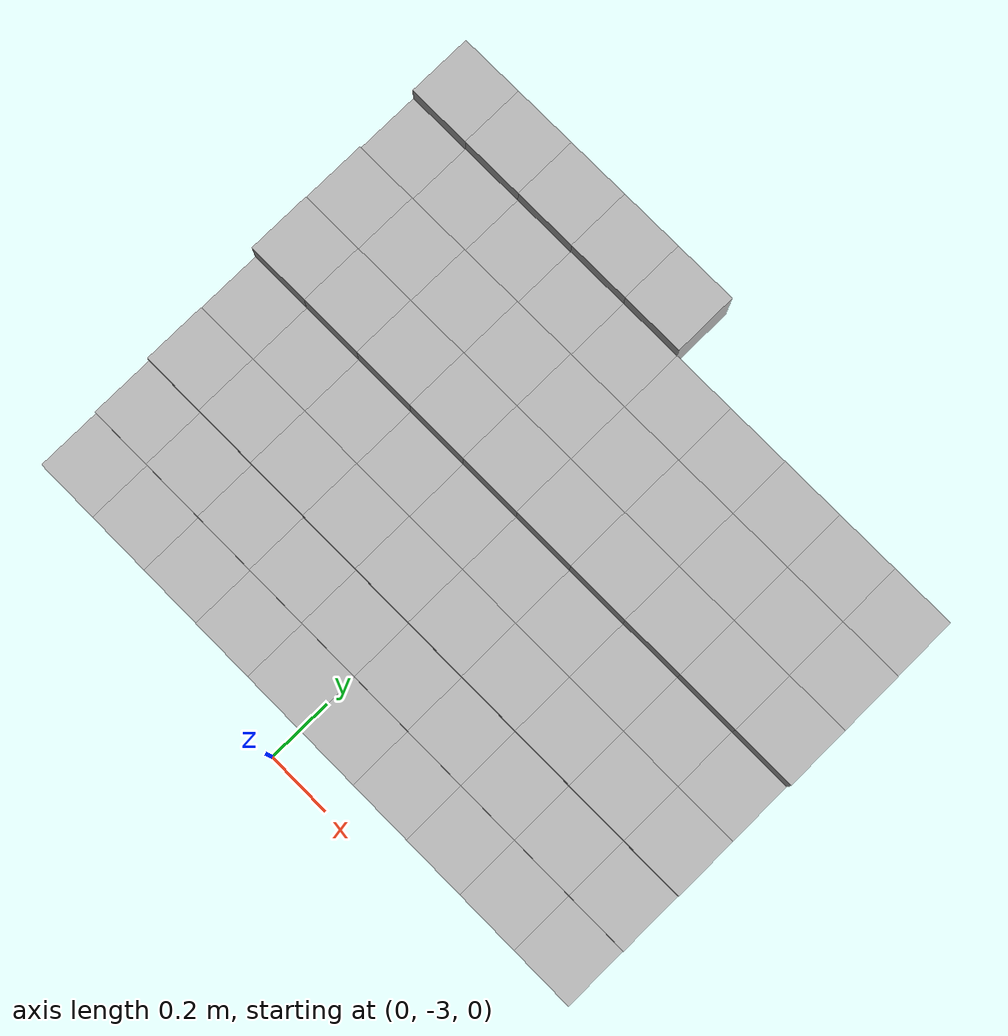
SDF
<sdf version="1.6">
 <model name="Terrain">
  <static>true</static>
  <link name="box_7_0">
   <pose>-0.9 -1.4 0.0894675590558 0 0 0</pose>
   <inertial>
    <mass>1.0</mass>
    <inertia><ixx>0.0</ixx><ixy>0.0</ixy><ixz>0.0</ixz><iyy>0.0</iyy><iyz>0.0</iyz><izz>0.0</izz></inertia>
   </inertial>
   <collision name="collision"><geometry><box><size>0.2 0.2 0.178935118112</size></box></geometry></collision>
   <visual name="visual"><geometry><box><size>0.2 0.2 0.178935118112</size></box></geometry></visual>
  </link>
  <link name="box_7_1">
   <pose>-0.7 -1.4 0.0894675590558 0 0 0</pose>
   <inertial>
    <mass>1.0</mass>
    <inertia><ixx>0.0</ixx><ixy>0.0</ixy><ixz>0.0</ixz><iyy>0.0</iyy><iyz>0.0</iyz><izz>0.0</izz></inertia>
   </inertial>
   <collision name="collision"><geometry><box><size>0.2 0.2 0.178935118112</size></box></geometry></collision>
   <visual name="visual"><geometry><box><size>0.2 0.2 0.178935118112</size></box></geometry></visual>
  </link>
  <link name="box_7_2">
   <pose>-0.5 -1.4 0.0894675590558 0 0 0</pose>
   <inertial>
    <mass>1.0</mass>
    <inertia><ixx>0.0</ixx><ixy>0.0</ixy><ixz>0.0</ixz><iyy>0.0</iyy><iyz>0.0</iyz><izz>0.0</izz></inertia>
   </inertial>
   <collision name="collision"><geometry><box><size>0.2 0.2 0.178935118112</size></box></geometry></collision>
   <visual name="visual"><geometry><box><size>0.2 0.2 0.178935118112</size></box></geometry></visual>
  </link>
  <link name="box_7_3">
   <pose>-0.3 -1.4 0.0894675590558 0 0 0</pose>
   <inertial>
    <mass>1.0</mass>
    <inertia><ixx>0.0</ixx><ixy>0.0</ixy><ixz>0.0</ixz><iyy>0.0</iyy><iyz>0.0</iyz><izz>0.0</izz></inertia>
   </inertial>
   <collision name="collision"><geometry><box><size>0.2 0.2 0.178935118112</size></box></geometry></collision>
   <visual name="visual"><geometry><box><size>0.2 0.2 0.178935118112</size></box></geometry></visual>
  </link>
  <link name="box_7_4">
   <pose>-0.1 -1.4 0.0894675590558 0 0 0</pose>
   <inertial>
    <mass>1.0</mass>
    <inertia><ixx>0.0</ixx><ixy>0.0</ixy><ixz>0.0</ixz><iyy>0.0</iyy><iyz>0.0</iyz><izz>0.0</izz></inertia>
   </inertial>
   <collision name="collision"><geometry><box><size>0.2 0.2 0.178935118112</size></box></geometry></collision>
   <visual name="visual"><geometry><box><size>0.2 0.2 0.178935118112</size></box></geometry></visual>
  </link>
  <link name="box_8_0">
   <pose>-0.9 -1.6 0.0574359904285 0 0 0</pose>
   <inertial>
    <mass>1.0</mass>
    <inertia><ixx>0.0</ixx><ixy>0.0</ixy><ixz>0.0</ixz><iyy>0.0</iyy><iyz>0.0</iyz><izz>0.0</izz></inertia>
   </inertial>
   <collision name="collision"><geometry><box><size>0.2 0.2 0.114871980857</size></box></geometry></collision>
   <visual name="visual"><geometry><box><size>0.2 0.2 0.114871980857</size></box></geometry></visual>
  </link>
  <link name="box_8_1">
   <pose>-0.7 -1.6 0.0574359904285 0 0 0</pose>
   <inertial>
    <mass>1.0</mass>
    <inertia><ixx>0.0</ixx><ixy>0.0</ixy><ixz>0.0</ixz><iyy>0.0</iyy><iyz>0.0</iyz><izz>0.0</izz></inertia>
   </inertial>
   <collision name="collision"><geometry><box><size>0.2 0.2 0.114871980857</size></box></geometry></collision>
   <visual name="visual"><geometry><box><size>0.2 0.2 0.114871980857</size></box></geometry></visual>
  </link>
  <link name="box_8_2">
   <pose>-0.5 -1.6 0.0574359904285 0 0 0</pose>
   <inertial>
    <mass>1.0</mass>
    <inertia><ixx>0.0</ixx><ixy>0.0</ixy><ixz>0.0</ixz><iyy>0.0</iyy><iyz>0.0</iyz><izz>0.0</izz></inertia>
   </inertial>
   <collision name="collision"><geometry><box><size>0.2 0.2 0.114871980857</size></box></geometry></collision>
   <visual name="visual"><geometry><box><size>0.2 0.2 0.114871980857</size></box></geometry></visual>
  </link>
  <link name="box_8_3">
   <pose>-0.3 -1.6 0.0574359904285 0 0 0</pose>
   <inertial>
    <mass>1.0</mass>
    <inertia><ixx>0.0</ixx><ixy>0.0</ixy><ixz>0.0</ixz><iyy>0.0</iyy><iyz>0.0</iyz><izz>0.0</izz></inertia>
   </inertial>
   <collision name="collision"><geometry><box><size>0.2 0.2 0.114871980857</size></box></geometry></collision>
   <visual name="visual"><geometry><box><size>0.2 0.2 0.114871980857</size></box></geometry></visual>
  </link>
  <link name="box_8_4">
   <pose>-0.1 -1.6 0.0574359904285 0 0 0</pose>
   <inertial>
    <mass>1.0</mass>
    <inertia><ixx>0.0</ixx><ixy>0.0</ixy><ixz>0.0</ixz><iyy>0.0</iyy><iyz>0.0</iyz><izz>0.0</izz></inertia>
   </inertial>
   <collision name="collision"><geometry><box><size>0.2 0.2 0.114871980857</size></box></geometry></collision>
   <visual name="visual"><geometry><box><size>0.2 0.2 0.114871980857</size></box></geometry></visual>
  </link>
  <link name="box_8_5">
   <pose>0.1 -1.6 0.0574359904285 0 0 0</pose>
   <inertial>
    <mass>1.0</mass>
    <inertia><ixx>0.0</ixx><ixy>0.0</ixy><ixz>0.0</ixz><iyy>0.0</iyy><iyz>0.0</iyz><izz>0.0</izz></inertia>
   </inertial>
   <collision name="collision"><geometry><box><size>0.2 0.2 0.114871980857</size></box></geometry></collision>
   <visual name="visual"><geometry><box><size>0.2 0.2 0.114871980857</size></box></geometry></visual>
  </link>
  <link name="box_8_6">
   <pose>0.3 -1.6 0.0574359904285 0 0 0</pose>
   <inertial>
    <mass>1.0</mass>
    <inertia><ixx>0.0</ixx><ixy>0.0</ixy><ixz>0.0</ixz><iyy>0.0</iyy><iyz>0.0</iyz><izz>0.0</izz></inertia>
   </inertial>
   <collision name="collision"><geometry><box><size>0.2 0.2 0.114871980857</size></box></geometry></collision>
   <visual name="visual"><geometry><box><size>0.2 0.2 0.114871980857</size></box></geometry></visual>
  </link>
  <link name="box_8_7">
   <pose>0.5 -1.6 0.0574359904285 0 0 0</pose>
   <inertial>
    <mass>1.0</mass>
    <inertia><ixx>0.0</ixx><ixy>0.0</ixy><ixz>0.0</ixz><iyy>0.0</iyy><iyz>0.0</iyz><izz>0.0</izz></inertia>
   </inertial>
   <collision name="collision"><geometry><box><size>0.2 0.2 0.114871980857</size></box></geometry></collision>
   <visual name="visual"><geometry><box><size>0.2 0.2 0.114871980857</size></box></geometry></visual>
  </link>
  <link name="box_8_8">
   <pose>0.7 -1.6 0.0574359904285 0 0 0</pose>
   <inertial>
    <mass>1.0</mass>
    <inertia><ixx>0.0</ixx><ixy>0.0</ixy><ixz>0.0</ixz><iyy>0.0</iyy><iyz>0.0</iyz><izz>0.0</izz></inertia>
   </inertial>
   <collision name="collision"><geometry><box><size>0.2 0.2 0.114871980857</size></box></geometry></collision>
   <visual name="visual"><geometry><box><size>0.2 0.2 0.114871980857</size></box></geometry></visual>
  </link>
  <link name="box_8_9">
   <pose>0.9 -1.6 0.0574359904285 0 0 0</pose>
   <inertial>
    <mass>1.0</mass>
    <inertia><ixx>0.0</ixx><ixy>0.0</ixy><ixz>0.0</ixz><iyy>0.0</iyy><iyz>0.0</iyz><izz>0.0</izz></inertia>
   </inertial>
   <collision name="collision"><geometry><box><size>0.2 0.2 0.114871980857</size></box></geometry></collision>
   <visual name="visual"><geometry><box><size>0.2 0.2 0.114871980857</size></box></geometry></visual>
  </link>
  <link name="box_9_0">
   <pose>-0.9 -1.8 0.065715749071 0 0 0</pose>
   <inertial>
    <mass>1.0</mass>
    <inertia><ixx>0.0</ixx><ixy>0.0</ixy><ixz>0.0</ixz><iyy>0.0</iyy><iyz>0.0</iyz><izz>0.0</izz></inertia>
   </inertial>
   <collision name="collision"><geometry><box><size>0.2 0.2 0.131431498142</size></box></geometry></collision>
   <visual name="visual"><geometry><box><size>0.2 0.2 0.131431498142</size></box></geometry></visual>
  </link>
  <link name="box_9_1">
   <pose>-0.7 -1.8 0.065715749071 0 0 0</pose>
   <inertial>
    <mass>1.0</mass>
    <inertia><ixx>0.0</ixx><ixy>0.0</ixy><ixz>0.0</ixz><iyy>0.0</iyy><iyz>0.0</iyz><izz>0.0</izz></inertia>
   </inertial>
   <collision name="collision"><geometry><box><size>0.2 0.2 0.131431498142</size></box></geometry></collision>
   <visual name="visual"><geometry><box><size>0.2 0.2 0.131431498142</size></box></geometry></visual>
  </link>
  <link name="box_9_2">
   <pose>-0.5 -1.8 0.065715749071 0 0 0</pose>
   <inertial>
    <mass>1.0</mass>
    <inertia><ixx>0.0</ixx><ixy>0.0</ixy><ixz>0.0</ixz><iyy>0.0</iyy><iyz>0.0</iyz><izz>0.0</izz></inertia>
   </inertial>
   <collision name="collision"><geometry><box><size>0.2 0.2 0.131431498142</size></box></geometry></collision>
   <visual name="visual"><geometry><box><size>0.2 0.2 0.131431498142</size></box></geometry></visual>
  </link>
  <link name="box_9_3">
   <pose>-0.3 -1.8 0.065715749071 0 0 0</pose>
   <inertial>
    <mass>1.0</mass>
    <inertia><ixx>0.0</ixx><ixy>0.0</ixy><ixz>0.0</ixz><iyy>0.0</iyy><iyz>0.0</iyz><izz>0.0</izz></inertia>
   </inertial>
   <collision name="collision"><geometry><box><size>0.2 0.2 0.131431498142</size></box></geometry></collision>
   <visual name="visual"><geometry><box><size>0.2 0.2 0.131431498142</size></box></geometry></visual>
  </link>
  <link name="box_9_4">
   <pose>-0.1 -1.8 0.065715749071 0 0 0</pose>
   <inertial>
    <mass>1.0</mass>
    <inertia><ixx>0.0</ixx><ixy>0.0</ixy><ixz>0.0</ixz><iyy>0.0</iyy><iyz>0.0</iyz><izz>0.0</izz></inertia>
   </inertial>
   <collision name="collision"><geometry><box><size>0.2 0.2 0.131431498142</size></box></geometry></collision>
   <visual name="visual"><geometry><box><size>0.2 0.2 0.131431498142</size></box></geometry></visual>
  </link>
  <link name="box_9_5">
   <pose>0.1 -1.8 0.065715749071 0 0 0</pose>
   <inertial>
    <mass>1.0</mass>
    <inertia><ixx>0.0</ixx><ixy>0.0</ixy><ixz>0.0</ixz><iyy>0.0</iyy><iyz>0.0</iyz><izz>0.0</izz></inertia>
   </inertial>
   <collision name="collision"><geometry><box><size>0.2 0.2 0.131431498142</size></box></geometry></collision>
   <visual name="visual"><geometry><box><size>0.2 0.2 0.131431498142</size></box></geometry></visual>
  </link>
  <link name="box_9_6">
   <pose>0.3 -1.8 0.065715749071 0 0 0</pose>
   <inertial>
    <mass>1.0</mass>
    <inertia><ixx>0.0</ixx><ixy>0.0</ixy><ixz>0.0</ixz><iyy>0.0</iyy><iyz>0.0</iyz><izz>0.0</izz></inertia>
   </inertial>
   <collision name="collision"><geometry><box><size>0.2 0.2 0.131431498142</size></box></geometry></collision>
   <visual name="visual"><geometry><box><size>0.2 0.2 0.131431498142</size></box></geometry></visual>
  </link>
  <link name="box_9_7">
   <pose>0.5 -1.8 0.065715749071 0 0 0</pose>
   <inertial>
    <mass>1.0</mass>
    <inertia><ixx>0.0</ixx><ixy>0.0</ixy><ixz>0.0</ixz><iyy>0.0</iyy><iyz>0.0</iyz><izz>0.0</izz></inertia>
   </inertial>
   <collision name="collision"><geometry><box><size>0.2 0.2 0.131431498142</size></box></geometry></collision>
   <visual name="visual"><geometry><box><size>0.2 0.2 0.131431498142</size></box></geometry></visual>
  </link>
  <link name="box_9_8">
   <pose>0.7 -1.8 0.065715749071 0 0 0</pose>
   <inertial>
    <mass>1.0</mass>
    <inertia><ixx>0.0</ixx><ixy>0.0</ixy><ixz>0.0</ixz><iyy>0.0</iyy><iyz>0.0</iyz><izz>0.0</izz></inertia>
   </inertial>
   <collision name="collision"><geometry><box><size>0.2 0.2 0.131431498142</size></box></geometry></collision>
   <visual name="visual"><geometry><box><size>0.2 0.2 0.131431498142</size></box></geometry></visual>
  </link>
  <link name="box_9_9">
   <pose>0.9 -1.8 0.065715749071 0 0 0</pose>
   <inertial>
    <mass>1.0</mass>
    <inertia><ixx>0.0</ixx><ixy>0.0</ixy><ixz>0.0</ixz><iyy>0.0</iyy><iyz>0.0</iyz><izz>0.0</izz></inertia>
   </inertial>
   <collision name="collision"><geometry><box><size>0.2 0.2 0.131431498142</size></box></geometry></collision>
   <visual name="visual"><geometry><box><size>0.2 0.2 0.131431498142</size></box></geometry></visual>
  </link>
  <link name="box_10_0">
   <pose>-0.9 -2.0 0.0686694296625 0 0 0</pose>
   <inertial>
    <mass>1.0</mass>
    <inertia><ixx>0.0</ixx><ixy>0.0</ixy><ixz>0.0</ixz><iyy>0.0</iyy><iyz>0.0</iyz><izz>0.0</izz></inertia>
   </inertial>
   <collision name="collision"><geometry><box><size>0.2 0.2 0.137338859325</size></box></geometry></collision>
   <visual name="visual"><geometry><box><size>0.2 0.2 0.137338859325</size></box></geometry></visual>
  </link>
  <link name="box_10_1">
   <pose>-0.7 -2.0 0.0686694296625 0 0 0</pose>
   <inertial>
    <mass>1.0</mass>
    <inertia><ixx>0.0</ixx><ixy>0.0</ixy><ixz>0.0</ixz><iyy>0.0</iyy><iyz>0.0</iyz><izz>0.0</izz></inertia>
   </inertial>
   <collision name="collision"><geometry><box><size>0.2 0.2 0.137338859325</size></box></geometry></collision>
   <visual name="visual"><geometry><box><size>0.2 0.2 0.137338859325</size></box></geometry></visual>
  </link>
  <link name="box_10_2">
   <pose>-0.5 -2.0 0.0686694296625 0 0 0</pose>
   <inertial>
    <mass>1.0</mass>
    <inertia><ixx>0.0</ixx><ixy>0.0</ixy><ixz>0.0</ixz><iyy>0.0</iyy><iyz>0.0</iyz><izz>0.0</izz></inertia>
   </inertial>
   <collision name="collision"><geometry><box><size>0.2 0.2 0.137338859325</size></box></geometry></collision>
   <visual name="visual"><geometry><box><size>0.2 0.2 0.137338859325</size></box></geometry></visual>
  </link>
  <link name="box_10_3">
   <pose>-0.3 -2.0 0.0686694296625 0 0 0</pose>
   <inertial>
    <mass>1.0</mass>
    <inertia><ixx>0.0</ixx><ixy>0.0</ixy><ixz>0.0</ixz><iyy>0.0</iyy><iyz>0.0</iyz><izz>0.0</izz></inertia>
   </inertial>
   <collision name="collision"><geometry><box><size>0.2 0.2 0.137338859325</size></box></geometry></collision>
   <visual name="visual"><geometry><box><size>0.2 0.2 0.137338859325</size></box></geometry></visual>
  </link>
  <link name="box_10_4">
   <pose>-0.1 -2.0 0.0686694296625 0 0 0</pose>
   <inertial>
    <mass>1.0</mass>
    <inertia><ixx>0.0</ixx><ixy>0.0</ixy><ixz>0.0</ixz><iyy>0.0</iyy><iyz>0.0</iyz><izz>0.0</izz></inertia>
   </inertial>
   <collision name="collision"><geometry><box><size>0.2 0.2 0.137338859325</size></box></geometry></collision>
   <visual name="visual"><geometry><box><size>0.2 0.2 0.137338859325</size></box></geometry></visual>
  </link>
  <link name="box_10_5">
   <pose>0.1 -2.0 0.0686694296625 0 0 0</pose>
   <inertial>
    <mass>1.0</mass>
    <inertia><ixx>0.0</ixx><ixy>0.0</ixy><ixz>0.0</ixz><iyy>0.0</iyy><iyz>0.0</iyz><izz>0.0</izz></inertia>
   </inertial>
   <collision name="collision"><geometry><box><size>0.2 0.2 0.137338859325</size></box></geometry></collision>
   <visual name="visual"><geometry><box><size>0.2 0.2 0.137338859325</size></box></geometry></visual>
  </link>
  <link name="box_10_6">
   <pose>0.3 -2.0 0.0686694296625 0 0 0</pose>
   <inertial>
    <mass>1.0</mass>
    <inertia><ixx>0.0</ixx><ixy>0.0</ixy><ixz>0.0</ixz><iyy>0.0</iyy><iyz>0.0</iyz><izz>0.0</izz></inertia>
   </inertial>
   <collision name="collision"><geometry><box><size>0.2 0.2 0.137338859325</size></box></geometry></collision>
   <visual name="visual"><geometry><box><size>0.2 0.2 0.137338859325</size></box></geometry></visual>
  </link>
  <link name="box_10_7">
   <pose>0.5 -2.0 0.0686694296625 0 0 0</pose>
   <inertial>
    <mass>1.0</mass>
    <inertia><ixx>0.0</ixx><ixy>0.0</ixy><ixz>0.0</ixz><iyy>0.0</iyy><iyz>0.0</iyz><izz>0.0</izz></inertia>
   </inertial>
   <collision name="collision"><geometry><box><size>0.2 0.2 0.137338859325</size></box></geometry></collision>
   <visual name="visual"><geometry><box><size>0.2 0.2 0.137338859325</size></box></geometry></visual>
  </link>
  <link name="box_10_8">
   <pose>0.7 -2.0 0.0686694296625 0 0 0</pose>
   <inertial>
    <mass>1.0</mass>
    <inertia><ixx>0.0</ixx><ixy>0.0</ixy><ixz>0.0</ixz><iyy>0.0</iyy><iyz>0.0</iyz><izz>0.0</izz></inertia>
   </inertial>
   <collision name="collision"><geometry><box><size>0.2 0.2 0.137338859325</size></box></geometry></collision>
   <visual name="visual"><geometry><box><size>0.2 0.2 0.137338859325</size></box></geometry></visual>
  </link>
  <link name="box_10_9">
   <pose>0.9 -2.0 0.0686694296625 0 0 0</pose>
   <inertial>
    <mass>1.0</mass>
    <inertia><ixx>0.0</ixx><ixy>0.0</ixy><ixz>0.0</ixz><iyy>0.0</iyy><iyz>0.0</iyz><izz>0.0</izz></inertia>
   </inertial>
   <collision name="collision"><geometry><box><size>0.2 0.2 0.137338859325</size></box></geometry></collision>
   <visual name="visual"><geometry><box><size>0.2 0.2 0.137338859325</size></box></geometry></visual>
  </link>
  <link name="box_11_0">
   <pose>-0.9 -2.2 0.0228005111256 0 0 0</pose>
   <inertial>
    <mass>1.0</mass>
    <inertia><ixx>0.0</ixx><ixy>0.0</ixy><ixz>0.0</ixz><iyy>0.0</iyy><iyz>0.0</iyz><izz>0.0</izz></inertia>
   </inertial>
   <collision name="collision"><geometry><box><size>0.2 0.2 0.0456010222512</size></box></geometry></collision>
   <visual name="visual"><geometry><box><size>0.2 0.2 0.0456010222512</size></box></geometry></visual>
  </link>
  <link name="box_11_1">
   <pose>-0.7 -2.2 0.0228005111256 0 0 0</pose>
   <inertial>
    <mass>1.0</mass>
    <inertia><ixx>0.0</ixx><ixy>0.0</ixy><ixz>0.0</ixz><iyy>0.0</iyy><iyz>0.0</iyz><izz>0.0</izz></inertia>
   </inertial>
   <collision name="collision"><geometry><box><size>0.2 0.2 0.0456010222512</size></box></geometry></collision>
   <visual name="visual"><geometry><box><size>0.2 0.2 0.0456010222512</size></box></geometry></visual>
  </link>
  <link name="box_11_2">
   <pose>-0.5 -2.2 0.0228005111256 0 0 0</pose>
   <inertial>
    <mass>1.0</mass>
    <inertia><ixx>0.0</ixx><ixy>0.0</ixy><ixz>0.0</ixz><iyy>0.0</iyy><iyz>0.0</iyz><izz>0.0</izz></inertia>
   </inertial>
   <collision name="collision"><geometry><box><size>0.2 0.2 0.0456010222512</size></box></geometry></collision>
   <visual name="visual"><geometry><box><size>0.2 0.2 0.0456010222512</size></box></geometry></visual>
  </link>
  <link name="box_11_3">
   <pose>-0.3 -2.2 0.0228005111256 0 0 0</pose>
   <inertial>
    <mass>1.0</mass>
    <inertia><ixx>0.0</ixx><ixy>0.0</ixy><ixz>0.0</ixz><iyy>0.0</iyy><iyz>0.0</iyz><izz>0.0</izz></inertia>
   </inertial>
   <collision name="collision"><geometry><box><size>0.2 0.2 0.0456010222512</size></box></geometry></collision>
   <visual name="visual"><geometry><box><size>0.2 0.2 0.0456010222512</size></box></geometry></visual>
  </link>
  <link name="box_11_4">
   <pose>-0.1 -2.2 0.0228005111256 0 0 0</pose>
   <inertial>
    <mass>1.0</mass>
    <inertia><ixx>0.0</ixx><ixy>0.0</ixy><ixz>0.0</ixz><iyy>0.0</iyy><iyz>0.0</iyz><izz>0.0</izz></inertia>
   </inertial>
   <collision name="collision"><geometry><box><size>0.2 0.2 0.0456010222512</size></box></geometry></collision>
   <visual name="visual"><geometry><box><size>0.2 0.2 0.0456010222512</size></box></geometry></visual>
  </link>
  <link name="box_11_5">
   <pose>0.1 -2.2 0.0228005111256 0 0 0</pose>
   <inertial>
    <mass>1.0</mass>
    <inertia><ixx>0.0</ixx><ixy>0.0</ixy><ixz>0.0</ixz><iyy>0.0</iyy><iyz>0.0</iyz><izz>0.0</izz></inertia>
   </inertial>
   <collision name="collision"><geometry><box><size>0.2 0.2 0.0456010222512</size></box></geometry></collision>
   <visual name="visual"><geometry><box><size>0.2 0.2 0.0456010222512</size></box></geometry></visual>
  </link>
  <link name="box_11_6">
   <pose>0.3 -2.2 0.0228005111256 0 0 0</pose>
   <inertial>
    <mass>1.0</mass>
    <inertia><ixx>0.0</ixx><ixy>0.0</ixy><ixz>0.0</ixz><iyy>0.0</iyy><iyz>0.0</iyz><izz>0.0</izz></inertia>
   </inertial>
   <collision name="collision"><geometry><box><size>0.2 0.2 0.0456010222512</size></box></geometry></collision>
   <visual name="visual"><geometry><box><size>0.2 0.2 0.0456010222512</size></box></geometry></visual>
  </link>
  <link name="box_11_7">
   <pose>0.5 -2.2 0.0228005111256 0 0 0</pose>
   <inertial>
    <mass>1.0</mass>
    <inertia><ixx>0.0</ixx><ixy>0.0</ixy><ixz>0.0</ixz><iyy>0.0</iyy><iyz>0.0</iyz><izz>0.0</izz></inertia>
   </inertial>
   <collision name="collision"><geometry><box><size>0.2 0.2 0.0456010222512</size></box></geometry></collision>
   <visual name="visual"><geometry><box><size>0.2 0.2 0.0456010222512</size></box></geometry></visual>
  </link>
  <link name="box_11_8">
   <pose>0.7 -2.2 0.0228005111256 0 0 0</pose>
   <inertial>
    <mass>1.0</mass>
    <inertia><ixx>0.0</ixx><ixy>0.0</ixy><ixz>0.0</ixz><iyy>0.0</iyy><iyz>0.0</iyz><izz>0.0</izz></inertia>
   </inertial>
   <collision name="collision"><geometry><box><size>0.2 0.2 0.0456010222512</size></box></geometry></collision>
   <visual name="visual"><geometry><box><size>0.2 0.2 0.0456010222512</size></box></geometry></visual>
  </link>
  <link name="box_11_9">
   <pose>0.9 -2.2 0.0228005111256 0 0 0</pose>
   <inertial>
    <mass>1.0</mass>
    <inertia><ixx>0.0</ixx><ixy>0.0</ixy><ixz>0.0</ixz><iyy>0.0</iyy><iyz>0.0</iyz><izz>0.0</izz></inertia>
   </inertial>
   <collision name="collision"><geometry><box><size>0.2 0.2 0.0456010222512</size></box></geometry></collision>
   <visual name="visual"><geometry><box><size>0.2 0.2 0.0456010222512</size></box></geometry></visual>
  </link>
  <link name="box_12_0">
   <pose>-0.9 -2.4 0.0252076656674 0 0 0</pose>
   <inertial>
    <mass>1.0</mass>
    <inertia><ixx>0.0</ixx><ixy>0.0</ixy><ixz>0.0</ixz><iyy>0.0</iyy><iyz>0.0</iyz><izz>0.0</izz></inertia>
   </inertial>
   <collision name="collision"><geometry><box><size>0.2 0.2 0.0504153313348</size></box></geometry></collision>
   <visual name="visual"><geometry><box><size>0.2 0.2 0.0504153313348</size></box></geometry></visual>
  </link>
  <link name="box_12_1">
   <pose>-0.7 -2.4 0.0252076656674 0 0 0</pose>
   <inertial>
    <mass>1.0</mass>
    <inertia><ixx>0.0</ixx><ixy>0.0</ixy><ixz>0.0</ixz><iyy>0.0</iyy><iyz>0.0</iyz><izz>0.0</izz></inertia>
   </inertial>
   <collision name="collision"><geometry><box><size>0.2 0.2 0.0504153313348</size></box></geometry></collision>
   <visual name="visual"><geometry><box><size>0.2 0.2 0.0504153313348</size></box></geometry></visual>
  </link>
  <link name="box_12_2">
   <pose>-0.5 -2.4 0.0252076656674 0 0 0</pose>
   <inertial>
    <mass>1.0</mass>
    <inertia><ixx>0.0</ixx><ixy>0.0</ixy><ixz>0.0</ixz><iyy>0.0</iyy><iyz>0.0</iyz><izz>0.0</izz></inertia>
   </inertial>
   <collision name="collision"><geometry><box><size>0.2 0.2 0.0504153313348</size></box></geometry></collision>
   <visual name="visual"><geometry><box><size>0.2 0.2 0.0504153313348</size></box></geometry></visual>
  </link>
  <link name="box_12_3">
   <pose>-0.3 -2.4 0.0252076656674 0 0 0</pose>
   <inertial>
    <mass>1.0</mass>
    <inertia><ixx>0.0</ixx><ixy>0.0</ixy><ixz>0.0</ixz><iyy>0.0</iyy><iyz>0.0</iyz><izz>0.0</izz></inertia>
   </inertial>
   <collision name="collision"><geometry><box><size>0.2 0.2 0.0504153313348</size></box></geometry></collision>
   <visual name="visual"><geometry><box><size>0.2 0.2 0.0504153313348</size></box></geometry></visual>
  </link>
  <link name="box_12_4">
   <pose>-0.1 -2.4 0.0252076656674 0 0 0</pose>
   <inertial>
    <mass>1.0</mass>
    <inertia><ixx>0.0</ixx><ixy>0.0</ixy><ixz>0.0</ixz><iyy>0.0</iyy><iyz>0.0</iyz><izz>0.0</izz></inertia>
   </inertial>
   <collision name="collision"><geometry><box><size>0.2 0.2 0.0504153313348</size></box></geometry></collision>
   <visual name="visual"><geometry><box><size>0.2 0.2 0.0504153313348</size></box></geometry></visual>
  </link>
  <link name="box_12_5">
   <pose>0.1 -2.4 0.0252076656674 0 0 0</pose>
   <inertial>
    <mass>1.0</mass>
    <inertia><ixx>0.0</ixx><ixy>0.0</ixy><ixz>0.0</ixz><iyy>0.0</iyy><iyz>0.0</iyz><izz>0.0</izz></inertia>
   </inertial>
   <collision name="collision"><geometry><box><size>0.2 0.2 0.0504153313348</size></box></geometry></collision>
   <visual name="visual"><geometry><box><size>0.2 0.2 0.0504153313348</size></box></geometry></visual>
  </link>
  <link name="box_12_6">
   <pose>0.3 -2.4 0.0252076656674 0 0 0</pose>
   <inertial>
    <mass>1.0</mass>
    <inertia><ixx>0.0</ixx><ixy>0.0</ixy><ixz>0.0</ixz><iyy>0.0</iyy><iyz>0.0</iyz><izz>0.0</izz></inertia>
   </inertial>
   <collision name="collision"><geometry><box><size>0.2 0.2 0.0504153313348</size></box></geometry></collision>
   <visual name="visual"><geometry><box><size>0.2 0.2 0.0504153313348</size></box></geometry></visual>
  </link>
  <link name="box_12_7">
   <pose>0.5 -2.4 0.0252076656674 0 0 0</pose>
   <inertial>
    <mass>1.0</mass>
    <inertia><ixx>0.0</ixx><ixy>0.0</ixy><ixz>0.0</ixz><iyy>0.0</iyy><iyz>0.0</iyz><izz>0.0</izz></inertia>
   </inertial>
   <collision name="collision"><geometry><box><size>0.2 0.2 0.0504153313348</size></box></geometry></collision>
   <visual name="visual"><geometry><box><size>0.2 0.2 0.0504153313348</size></box></geometry></visual>
  </link>
  <link name="box_12_8">
   <pose>0.7 -2.4 0.0252076656674 0 0 0</pose>
   <inertial>
    <mass>1.0</mass>
    <inertia><ixx>0.0</ixx><ixy>0.0</ixy><ixz>0.0</ixz><iyy>0.0</iyy><iyz>0.0</iyz><izz>0.0</izz></inertia>
   </inertial>
   <collision name="collision"><geometry><box><size>0.2 0.2 0.0504153313348</size></box></geometry></collision>
   <visual name="visual"><geometry><box><size>0.2 0.2 0.0504153313348</size></box></geometry></visual>
  </link>
  <link name="box_12_9">
   <pose>0.9 -2.4 0.0252076656674 0 0 0</pose>
   <inertial>
    <mass>1.0</mass>
    <inertia><ixx>0.0</ixx><ixy>0.0</ixy><ixz>0.0</ixz><iyy>0.0</iyy><iyz>0.0</iyz><izz>0.0</izz></inertia>
   </inertial>
   <collision name="collision"><geometry><box><size>0.2 0.2 0.0504153313348</size></box></geometry></collision>
   <visual name="visual"><geometry><box><size>0.2 0.2 0.0504153313348</size></box></geometry></visual>
  </link>
  <link name="box_13_0">
   <pose>-0.9 -2.6 0.00926117811978 0 0 0</pose>
   <inertial>
    <mass>1.0</mass>
    <inertia><ixx>0.0</ixx><ixy>0.0</ixy><ixz>0.0</ixz><iyy>0.0</iyy><iyz>0.0</iyz><izz>0.0</izz></inertia>
   </inertial>
   <collision name="collision"><geometry><box><size>0.2 0.2 0.0185223562396</size></box></geometry></collision>
   <visual name="visual"><geometry><box><size>0.2 0.2 0.0185223562396</size></box></geometry></visual>
  </link>
  <link name="box_13_1">
   <pose>-0.7 -2.6 0.00926117811978 0 0 0</pose>
   <inertial>
    <mass>1.0</mass>
    <inertia><ixx>0.0</ixx><ixy>0.0</ixy><ixz>0.0</ixz><iyy>0.0</iyy><iyz>0.0</iyz><izz>0.0</izz></inertia>
   </inertial>
   <collision name="collision"><geometry><box><size>0.2 0.2 0.0185223562396</size></box></geometry></collision>
   <visual name="visual"><geometry><box><size>0.2 0.2 0.0185223562396</size></box></geometry></visual>
  </link>
  <link name="box_13_2">
   <pose>-0.5 -2.6 0.00926117811978 0 0 0</pose>
   <inertial>
    <mass>1.0</mass>
    <inertia><ixx>0.0</ixx><ixy>0.0</ixy><ixz>0.0</ixz><iyy>0.0</iyy><iyz>0.0</iyz><izz>0.0</izz></inertia>
   </inertial>
   <collision name="collision"><geometry><box><size>0.2 0.2 0.0185223562396</size></box></geometry></collision>
   <visual name="visual"><geometry><box><size>0.2 0.2 0.0185223562396</size></box></geometry></visual>
  </link>
  <link name="box_13_3">
   <pose>-0.3 -2.6 0.00926117811978 0 0 0</pose>
   <inertial>
    <mass>1.0</mass>
    <inertia><ixx>0.0</ixx><ixy>0.0</ixy><ixz>0.0</ixz><iyy>0.0</iyy><iyz>0.0</iyz><izz>0.0</izz></inertia>
   </inertial>
   <collision name="collision"><geometry><box><size>0.2 0.2 0.0185223562396</size></box></geometry></collision>
   <visual name="visual"><geometry><box><size>0.2 0.2 0.0185223562396</size></box></geometry></visual>
  </link>
  <link name="box_13_4">
   <pose>-0.1 -2.6 0.00926117811978 0 0 0</pose>
   <inertial>
    <mass>1.0</mass>
    <inertia><ixx>0.0</ixx><ixy>0.0</ixy><ixz>0.0</ixz><iyy>0.0</iyy><iyz>0.0</iyz><izz>0.0</izz></inertia>
   </inertial>
   <collision name="collision"><geometry><box><size>0.2 0.2 0.0185223562396</size></box></geometry></collision>
   <visual name="visual"><geometry><box><size>0.2 0.2 0.0185223562396</size></box></geometry></visual>
  </link>
  <link name="box_13_5">
   <pose>0.1 -2.6 0.00926117811978 0 0 0</pose>
   <inertial>
    <mass>1.0</mass>
    <inertia><ixx>0.0</ixx><ixy>0.0</ixy><ixz>0.0</ixz><iyy>0.0</iyy><iyz>0.0</iyz><izz>0.0</izz></inertia>
   </inertial>
   <collision name="collision"><geometry><box><size>0.2 0.2 0.0185223562396</size></box></geometry></collision>
   <visual name="visual"><geometry><box><size>0.2 0.2 0.0185223562396</size></box></geometry></visual>
  </link>
  <link name="box_13_6">
   <pose>0.3 -2.6 0.00926117811978 0 0 0</pose>
   <inertial>
    <mass>1.0</mass>
    <inertia><ixx>0.0</ixx><ixy>0.0</ixy><ixz>0.0</ixz><iyy>0.0</iyy><iyz>0.0</iyz><izz>0.0</izz></inertia>
   </inertial>
   <collision name="collision"><geometry><box><size>0.2 0.2 0.0185223562396</size></box></geometry></collision>
   <visual name="visual"><geometry><box><size>0.2 0.2 0.0185223562396</size></box></geometry></visual>
  </link>
  <link name="box_13_7">
   <pose>0.5 -2.6 0.00926117811978 0 0 0</pose>
   <inertial>
    <mass>1.0</mass>
    <inertia><ixx>0.0</ixx><ixy>0.0</ixy><ixz>0.0</ixz><iyy>0.0</iyy><iyz>0.0</iyz><izz>0.0</izz></inertia>
   </inertial>
   <collision name="collision"><geometry><box><size>0.2 0.2 0.0185223562396</size></box></geometry></collision>
   <visual name="visual"><geometry><box><size>0.2 0.2 0.0185223562396</size></box></geometry></visual>
  </link>
  <link name="box_13_8">
   <pose>0.7 -2.6 0.00926117811978 0 0 0</pose>
   <inertial>
    <mass>1.0</mass>
    <inertia><ixx>0.0</ixx><ixy>0.0</ixy><ixz>0.0</ixz><iyy>0.0</iyy><iyz>0.0</iyz><izz>0.0</izz></inertia>
   </inertial>
   <collision name="collision"><geometry><box><size>0.2 0.2 0.0185223562396</size></box></geometry></collision>
   <visual name="visual"><geometry><box><size>0.2 0.2 0.0185223562396</size></box></geometry></visual>
  </link>
  <link name="box_13_9">
   <pose>0.9 -2.6 0.00926117811978 0 0 0</pose>
   <inertial>
    <mass>1.0</mass>
    <inertia><ixx>0.0</ixx><ixy>0.0</ixy><ixz>0.0</ixz><iyy>0.0</iyy><iyz>0.0</iyz><izz>0.0</izz></inertia>
   </inertial>
   <collision name="collision"><geometry><box><size>0.2 0.2 0.0185223562396</size></box></geometry></collision>
   <visual name="visual"><geometry><box><size>0.2 0.2 0.0185223562396</size></box></geometry></visual>
  </link>
  <link name="box_14_0">
   <pose>-0.9 -2.8 -0.0228381849418 0 0 0</pose>
   <inertial>
    <mass>1.0</mass>
    <inertia><ixx>0.0</ixx><ixy>0.0</ixy><ixz>0.0</ixz><iyy>0.0</iyy><iyz>0.0</iyz><izz>0.0</izz></inertia>
   </inertial>
   <collision name="collision"><geometry><box><size>0.2 0.2 -0.0456763698836</size></box></geometry></collision>
   <visual name="visual"><geometry><box><size>0.2 0.2 -0.0456763698836</size></box></geometry></visual>
  </link>
  <link name="box_14_1">
   <pose>-0.7 -2.8 -0.0228381849418 0 0 0</pose>
   <inertial>
    <mass>1.0</mass>
    <inertia><ixx>0.0</ixx><ixy>0.0</ixy><ixz>0.0</ixz><iyy>0.0</iyy><iyz>0.0</iyz><izz>0.0</izz></inertia>
   </inertial>
   <collision name="collision"><geometry><box><size>0.2 0.2 -0.0456763698836</size></box></geometry></collision>
   <visual name="visual"><geometry><box><size>0.2 0.2 -0.0456763698836</size></box></geometry></visual>
  </link>
  <link name="box_14_2">
   <pose>-0.5 -2.8 -0.0228381849418 0 0 0</pose>
   <inertial>
    <mass>1.0</mass>
    <inertia><ixx>0.0</ixx><ixy>0.0</ixy><ixz>0.0</ixz><iyy>0.0</iyy><iyz>0.0</iyz><izz>0.0</izz></inertia>
   </inertial>
   <collision name="collision"><geometry><box><size>0.2 0.2 -0.0456763698836</size></box></geometry></collision>
   <visual name="visual"><geometry><box><size>0.2 0.2 -0.0456763698836</size></box></geometry></visual>
  </link>
  <link name="box_14_3">
   <pose>-0.3 -2.8 -0.0228381849418 0 0 0</pose>
   <inertial>
    <mass>1.0</mass>
    <inertia><ixx>0.0</ixx><ixy>0.0</ixy><ixz>0.0</ixz><iyy>0.0</iyy><iyz>0.0</iyz><izz>0.0</izz></inertia>
   </inertial>
   <collision name="collision"><geometry><box><size>0.2 0.2 -0.0456763698836</size></box></geometry></collision>
   <visual name="visual"><geometry><box><size>0.2 0.2 -0.0456763698836</size></box></geometry></visual>
  </link>
  <link name="box_14_4">
   <pose>-0.1 -2.8 -0.0228381849418 0 0 0</pose>
   <inertial>
    <mass>1.0</mass>
    <inertia><ixx>0.0</ixx><ixy>0.0</ixy><ixz>0.0</ixz><iyy>0.0</iyy><iyz>0.0</iyz><izz>0.0</izz></inertia>
   </inertial>
   <collision name="collision"><geometry><box><size>0.2 0.2 -0.0456763698836</size></box></geometry></collision>
   <visual name="visual"><geometry><box><size>0.2 0.2 -0.0456763698836</size></box></geometry></visual>
  </link>
  <link name="box_14_5">
   <pose>0.1 -2.8 -0.0228381849418 0 0 0</pose>
   <inertial>
    <mass>1.0</mass>
    <inertia><ixx>0.0</ixx><ixy>0.0</ixy><ixz>0.0</ixz><iyy>0.0</iyy><iyz>0.0</iyz><izz>0.0</izz></inertia>
   </inertial>
   <collision name="collision"><geometry><box><size>0.2 0.2 -0.0456763698836</size></box></geometry></collision>
   <visual name="visual"><geometry><box><size>0.2 0.2 -0.0456763698836</size></box></geometry></visual>
  </link>
  <link name="box_14_6">
   <pose>0.3 -2.8 -0.0228381849418 0 0 0</pose>
   <inertial>
    <mass>1.0</mass>
    <inertia><ixx>0.0</ixx><ixy>0.0</ixy><ixz>0.0</ixz><iyy>0.0</iyy><iyz>0.0</iyz><izz>0.0</izz></inertia>
   </inertial>
   <collision name="collision"><geometry><box><size>0.2 0.2 -0.0456763698836</size></box></geometry></collision>
   <visual name="visual"><geometry><box><size>0.2 0.2 -0.0456763698836</size></box></geometry></visual>
  </link>
  <link name="box_14_7">
   <pose>0.5 -2.8 -0.0228381849418 0 0 0</pose>
   <inertial>
    <mass>1.0</mass>
    <inertia><ixx>0.0</ixx><ixy>0.0</ixy><ixz>0.0</ixz><iyy>0.0</iyy><iyz>0.0</iyz><izz>0.0</izz></inertia>
   </inertial>
   <collision name="collision"><geometry><box><size>0.2 0.2 -0.0456763698836</size></box></geometry></collision>
   <visual name="visual"><geometry><box><size>0.2 0.2 -0.0456763698836</size></box></geometry></visual>
  </link>
  <link name="box_14_8">
   <pose>0.7 -2.8 -0.0228381849418 0 0 0</pose>
   <inertial>
    <mass>1.0</mass>
    <inertia><ixx>0.0</ixx><ixy>0.0</ixy><ixz>0.0</ixz><iyy>0.0</iyy><iyz>0.0</iyz><izz>0.0</izz></inertia>
   </inertial>
   <collision name="collision"><geometry><box><size>0.2 0.2 -0.0456763698836</size></box></geometry></collision>
   <visual name="visual"><geometry><box><size>0.2 0.2 -0.0456763698836</size></box></geometry></visual>
  </link>
  <link name="box_14_9">
   <pose>0.9 -2.8 -0.0228381849418 0 0 0</pose>
   <inertial>
    <mass>1.0</mass>
    <inertia><ixx>0.0</ixx><ixy>0.0</ixy><ixz>0.0</ixz><iyy>0.0</iyy><iyz>0.0</iyz><izz>0.0</izz></inertia>
   </inertial>
   <collision name="collision"><geometry><box><size>0.2 0.2 -0.0456763698836</size></box></geometry></collision>
   <visual name="visual"><geometry><box><size>0.2 0.2 -0.0456763698836</size></box></geometry></visual>
  </link>
 </model>
</sdf>
